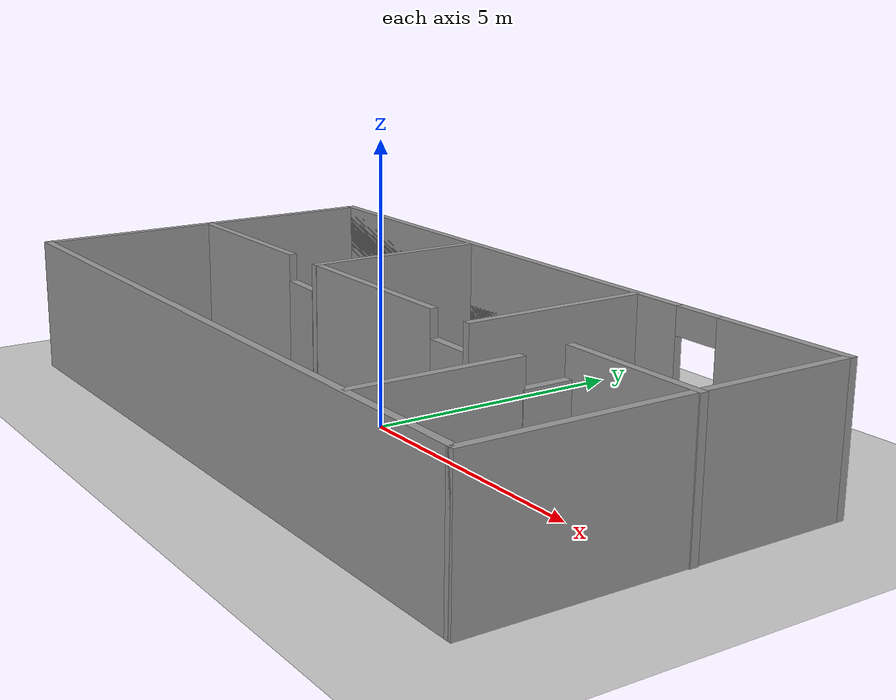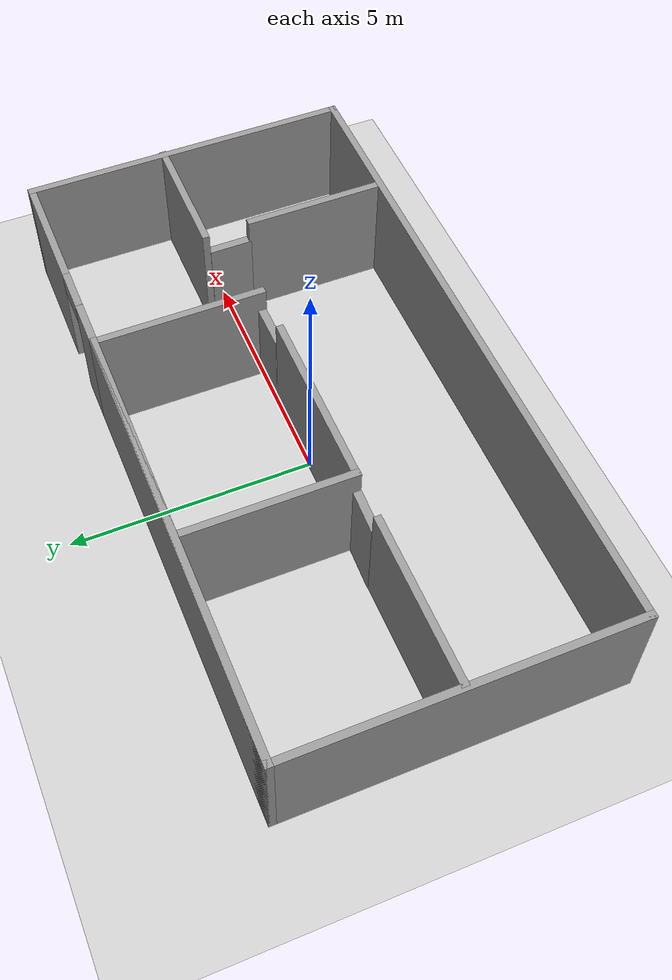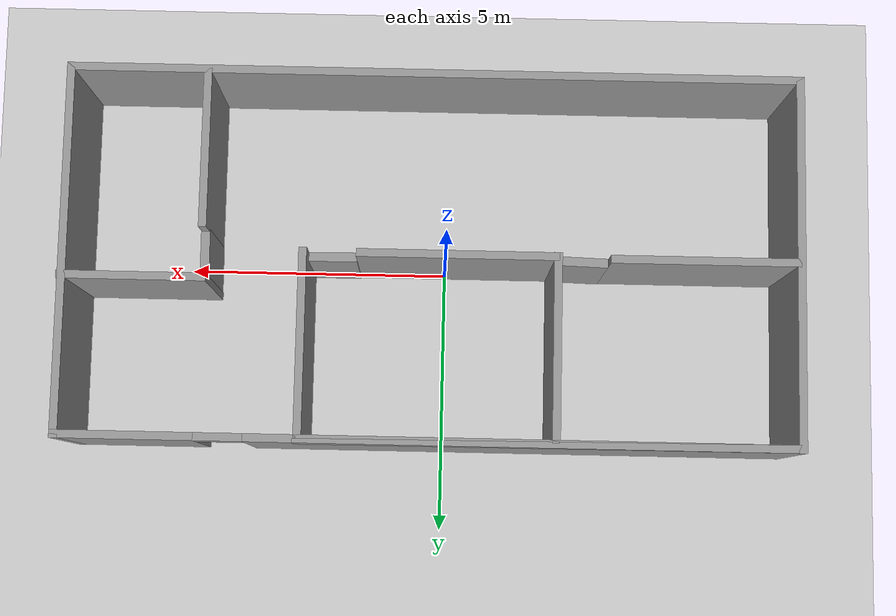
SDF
<sdf version="1.7">
 <world name="default">
  <light name="sun" type="directional">
   <pose>0 0 10 0 -0 0</pose>
   <diffuse>0.8 0.8 0.8 1</diffuse>
   <specular>0.2 0.2 0.2 1</specular>
   <attenuation>
    <range>1000</range>
    <constant>0.9</constant>
    <linear>0.01</linear>
    <quadratic>0.001</quadratic>
   </attenuation>
   <direction>-0.5 0.1 -0.9</direction>
   <spot><inner_angle>0</inner_angle><outer_angle>0</outer_angle><falloff>0</falloff></spot>
  </light>
  <model name="ground_plane">
   <static>1</static>
   <link name="link">
    <collision name="collision">
     <geometry><plane><normal>0 0 1</normal><size>100 100</size></plane></geometry>
     <surface><friction><ode><mu>100</mu><mu2>50</mu2></ode></friction></surface>
    </collision>
    <visual name="visual">
     <cast_shadows>0</cast_shadows>
     <geometry><plane><normal>0 0 1</normal><size>100 100</size></plane></geometry>
     <material>
      <script><uri>file://media/materials/scripts/gazebo.material</uri><name>Gazebo/Grey</name></script>
     </material>
    </visual>
   </link>
  </model>
  <gravity>0 0 -9.8</gravity>
  <magnetic_field>6e-06 2.3e-05 -4.2e-05</magnetic_field>
  <atmosphere type="adiabatic"/>
  <physics type="ode">
   <max_step_size>0.001</max_step_size>
   <real_time_factor>1</real_time_factor>
   <real_time_update_rate>1000</real_time_update_rate>
  </physics>
  <scene><ambient>0.4 0.4 0.4 1</ambient><background>0.7 0.7 0.7 1</background><shadows>1</shadows></scene>
  <spherical_coordinates>
   <surface_model>EARTH_WGS84</surface_model>
   <latitude_deg>0</latitude_deg>
   <longitude_deg>0</longitude_deg>
   <elevation>0</elevation>
   <heading_deg>0</heading_deg>
  </spherical_coordinates>
  <model name="map2">
   <pose>0.260747 -0.016997 0 0 -0 0</pose>
   <link name="Door_3">
    <collision name="Door_3_Collision">
     <geometry><box><size>0.9 0.17 2</size></box></geometry>
     <pose>0 0 1 0 -0 0</pose>
    </collision>
    <visual name="Door_3_Visual">
     <pose>0 0 1 0 -0 0</pose>
     <geometry><box><size>0.9 0.17 2</size></box></geometry>
     <material>
      <script><uri>file://media/materials/scripts/gazebo.material</uri><name>Gazebo/Grey</name></script>
     </material>
    </visual>
    <pose>-2.85619 -0.001636 0 0 -0 3.10908</pose>
   </link>
   <link name="Door_4">
    <collision name="Door_4_Collision">
     <geometry><box><size>0.9 0.17 2</size></box></geometry>
     <pose>0 0 1 0 -0 0</pose>
    </collision>
    <visual name="Door_4_Visual">
     <pose>0 0 1 0 -0 0</pose>
     <geometry><box><size>0.9 0.17 2</size></box></geometry>
     <material>
      <script><uri>file://media/materials/scripts/gazebo.material</uri><name>Gazebo/Grey</name></script>
     </material>
    </visual>
    <pose>1.83869 -0.001636 0 0 -0 -3.13242</pose>
   </link>
   <link name="Door_5">
    <collision name="Door_5_Collision">
     <geometry><box><size>0.9 0.17 2</size></box></geometry>
     <pose>0 0 1 0 -0 0</pose>
    </collision>
    <visual name="Door_5_Visual">
     <pose>0 0 1 0 -0 0</pose>
     <geometry><box><size>0.9 0.17 2</size></box></geometry>
     <material>
      <script><uri>file://media/materials/scripts/gazebo.material</uri><name>Gazebo/Grey</name></script>
     </material>
    </visual>
    <pose>4.23241 -0.028086 0 0 -0 1.57723</pose>
   </link>
   <link name="Wall_13">
    <collision name="Wall_13_Collision">
     <geometry><box><size>3.5 0.15 2.5</size></box></geometry>
     <pose>0 0 1.25 0 -0 0</pose>
    </collision>
    <visual name="Wall_13_Visual">
     <pose>0 0 1.25 0 -0 0</pose>
     <geometry><box><size>3.5 0.15 2.5</size></box></geometry>
     <material>
      <script><uri>file://media/materials/scripts/gazebo.material</uri><name>Gazebo/Grey</name></script>
      <ambient>1 1 1 1</ambient>
     </material>
     <meta><layer>0</layer></meta>
    </visual>
    <pose>2.36769 1.65606 0 0 -0 -1.5708</pose>
   </link>
   <link name="Wall_16">
    <collision name="Wall_16_Collision">
     <geometry><box><size>3.5 0.15 2.5</size></box></geometry>
     <pose>0 0 1.25 0 -0 0</pose>
    </collision>
    <visual name="Wall_16_Visual">
     <pose>0 0 1.25 0 -0 0</pose>
     <geometry><box><size>3.5 0.15 2.5</size></box></geometry>
     <material>
      <script><uri>file://media/materials/scripts/gazebo.material</uri><name>Gazebo/Grey</name></script>
      <ambient>1 1 1 1</ambient>
     </material>
     <meta><layer>0</layer></meta>
    </visual>
    <pose>-2.34041 1.65606 0 0 -0 -1.5708</pose>
   </link>
   <link name="Wall_18">
    <collision name="Wall_18_Collision">
     <geometry><box><size>3.5 0.15 2.5</size></box></geometry>
     <pose>0 0 1.25 0 -0 0</pose>
    </collision>
    <visual name="Wall_18_Visual">
     <pose>0 0 1.25 0 -0 0</pose>
     <geometry><box><size>3.5 0.15 2.5</size></box></geometry>
     <material>
      <script><uri>file://media/materials/scripts/gazebo.material</uri><name>Gazebo/Grey</name></script>
      <ambient>1 1 1 1</ambient>
     </material>
     <meta><layer>0</layer></meta>
    </visual>
    <pose>-5.06019 0.011589 0 0 -0 3.14159</pose>
   </link>
   <link name="Wall_2">
    <pose>-0.011286 3.425 0 0 -0 3.14159</pose>
    <visual name="Wall_2_Visual_0">
     <pose>-5.57275 0 1.25 0 -0 0</pose>
     <geometry><box><size>2.6045 0.15 2.5</size></box></geometry>
     <material>
      <script><uri>file://media/materials/scripts/gazebo.material</uri><name>Gazebo/Grey</name></script>
      <ambient>1 1 1 1</ambient>
     </material>
     <meta><layer>0</layer></meta>
    </visual>
    <collision name="Wall_2_Collision_0">
     <geometry><box><size>2.6045 0.15 2.5</size></box></geometry>
     <pose>-5.57275 0 1.25 0 -0 0</pose>
    </collision>
    <visual name="Wall_2_Visual_1">
     <pose>1.75225 0 1.25 0 -0 0</pose>
     <geometry><box><size>10.2455 0.15 2.5</size></box></geometry>
     <material>
      <script><uri>file://media/materials/scripts/gazebo.material</uri><name>Gazebo/Grey</name></script>
      <ambient>1 1 1 1</ambient>
     </material>
     <meta><layer>0</layer></meta>
    </visual>
    <collision name="Wall_2_Collision_1">
     <geometry><box><size>10.2455 0.15 2.5</size></box></geometry>
     <pose>1.75225 0 1.25 0 -0 0</pose>
    </collision>
    <visual name="Wall_2_Visual_2">
     <pose>2.2019 0 1.25 0 -0 0</pose>
     <geometry><box><size>9.3462 0.15 2.5</size></box></geometry>
     <material>
      <script><uri>file://media/materials/scripts/gazebo.material</uri><name>Gazebo/Grey</name></script>
      <ambient>1 1 1 1</ambient>
     </material>
     <meta><layer>0</layer></meta>
    </visual>
    <collision name="Wall_2_Collision_2">
     <geometry><box><size>9.3462 0.15 2.5</size></box></geometry>
     <pose>2.2019 0 1.25 0 -0 0</pose>
    </collision>
    <visual name="Wall_2_Visual_3">
     <pose>-3.82085 0 2.25 0 -0 0</pose>
     <geometry><box><size>0.8993 0.15 0.5</size></box></geometry>
     <material>
      <script><uri>file://media/materials/scripts/gazebo.material</uri><name>Gazebo/Grey</name></script>
      <ambient>1 1 1 1</ambient>
     </material>
     <meta><layer>0</layer></meta>
    </visual>
    <collision name="Wall_2_Collision_3">
     <geometry><box><size>0.8993 0.15 0.5</size></box></geometry>
     <pose>-3.82085 0 2.25 0 -0 0</pose>
    </collision>
   </link>
   <link name="Wall_20">
    <collision name="Wall_20_Collision">
     <geometry><box><size>3.75 0.15 2.5</size></box></geometry>
     <pose>0 0 1.25 0 -0 0</pose>
    </collision>
    <visual name="Wall_20_Visual">
     <pose>0 0 1.25 0 -0 0</pose>
     <geometry><box><size>3.75 0.15 2.5</size></box></geometry>
     <material>
      <script><uri>file://media/materials/scripts/gazebo.material</uri><name>Gazebo/Grey</name></script>
      <ambient>1 1 1 1</ambient>
     </material>
     <meta><layer>0</layer></meta>
    </visual>
    <pose>-0.490314 -0.014861 0 0 -0 3.14159</pose>
   </link>
   <link name="Wall_22">
    <collision name="Wall_22_Collision">
     <geometry><box><size>2.75 0.15 2.5</size></box></geometry>
     <pose>0 0 1.25 0 -0 0</pose>
    </collision>
    <visual name="Wall_22_Visual">
     <pose>0 0 1.25 0 -0 0</pose>
     <geometry><box><size>2.75 0.15 2.5</size></box></geometry>
     <material>
      <script><uri>file://media/materials/scripts/gazebo.material</uri><name>Gazebo/Grey</name></script>
      <ambient>1 1 1 1</ambient>
     </material>
     <meta><layer>0</layer></meta>
    </visual>
    <pose>5.51129 0.500914 0 0 -0 3.14159</pose>
   </link>
   <link name="Wall_24">
    <collision name="Wall_24_Collision">
     <geometry><box><size>3 0.15 2.5</size></box></geometry>
     <pose>0 0 1.25 0 -0 0</pose>
    </collision>
    <visual name="Wall_24_Visual">
     <pose>0 0 1.25 0 -0 0</pose>
     <geometry><box><size>3 0.15 2.5</size></box></geometry>
     <material>
      <script><uri>file://media/materials/scripts/gazebo.material</uri><name>Gazebo/Grey</name></script>
      <ambient>1 1 1 1</ambient>
     </material>
     <meta><layer>0</layer></meta>
    </visual>
    <pose>4.23241 -1.93579 0 0 -0 1.5708</pose>
   </link>
   <link name="Wall_3">
    <collision name="Wall_3_Collision">
     <geometry><box><size>7 0.15 2.5</size></box></geometry>
     <pose>0 0 1.25 0 -0 0</pose>
    </collision>
    <visual name="Wall_3_Visual">
     <pose>0 0 1.25 0 -0 0</pose>
     <geometry><box><size>7 0.15 2.5</size></box></geometry>
     <material>
      <script><uri>file://media/materials/scripts/gazebo.material</uri><name>Gazebo/Grey</name></script>
      <ambient>1 1 1 1</ambient>
     </material>
     <meta><layer>0</layer></meta>
    </visual>
    <pose>-6.81129 0 0 0 -0 -1.5708</pose>
   </link>
   <link name="Wall_6">
    <collision name="Wall_6_Collision">
     <geometry><box><size>13.75 0.15 2.5</size></box></geometry>
     <pose>0 0 1.25 0 -0 0</pose>
    </collision>
    <visual name="Wall_6_Visual">
     <pose>0 0 1.25 0 -0 0</pose>
     <geometry><box><size>13.75 0.15 2.5</size></box></geometry>
     <material>
      <script><uri>file://media/materials/scripts/gazebo.material</uri><name>Gazebo/Grey</name></script>
      <ambient>1 1 1 1</ambient>
     </material>
     <meta><layer>0</layer></meta>
    </visual>
    <pose>-0.011286 -3.425 0 0 -0 0</pose>
   </link>
   <link name="Wall_7">
    <collision name="Wall_7_Collision">
     <geometry><box><size>7 0.15 2.5</size></box></geometry>
     <pose>0 0 1.25 0 -0 0</pose>
    </collision>
    <visual name="Wall_7_Visual">
     <pose>0 0 1.25 0 -0 0</pose>
     <geometry><box><size>7 0.15 2.5</size></box></geometry>
     <material>
      <script><uri>file://media/materials/scripts/gazebo.material</uri><name>Gazebo/Grey</name></script>
      <ambient>1 1 1 1</ambient>
     </material>
     <meta><layer>0</layer></meta>
    </visual>
    <pose>6.78871 0 0 0 -0 1.5708</pose>
   </link>
   <static>1</static>
  </model>
 </world>
</sdf>
